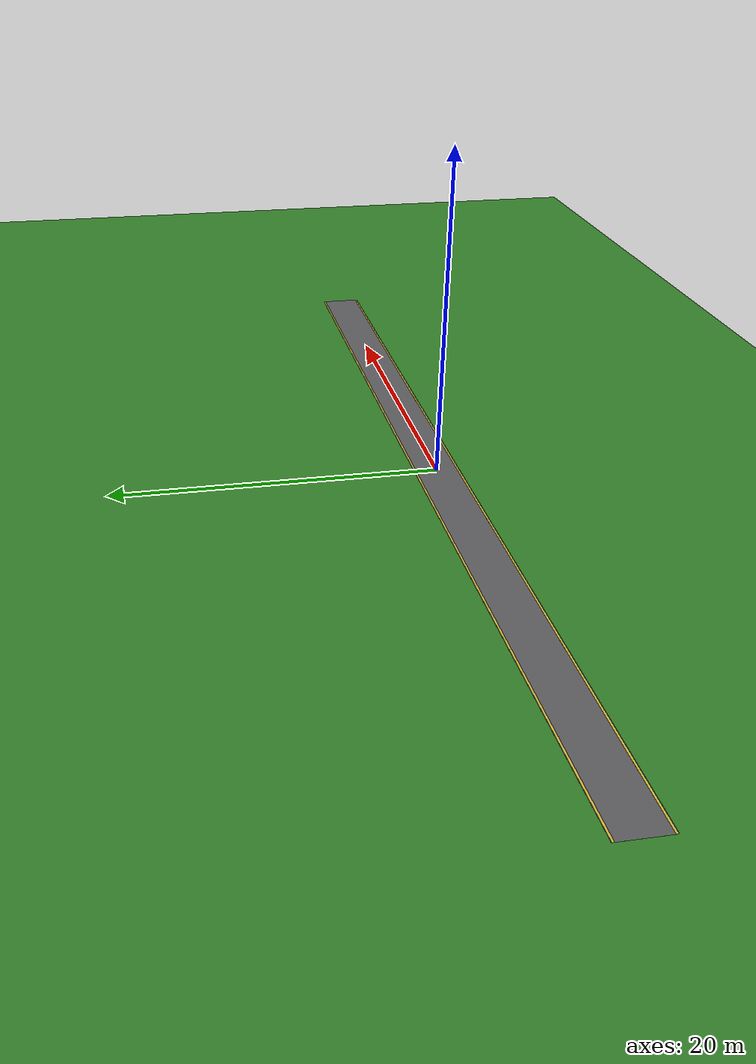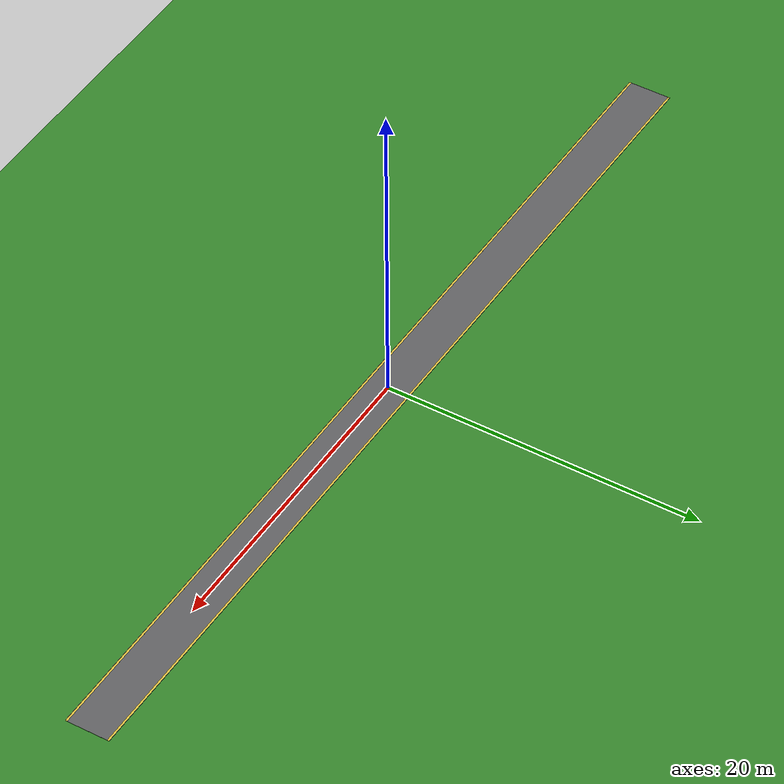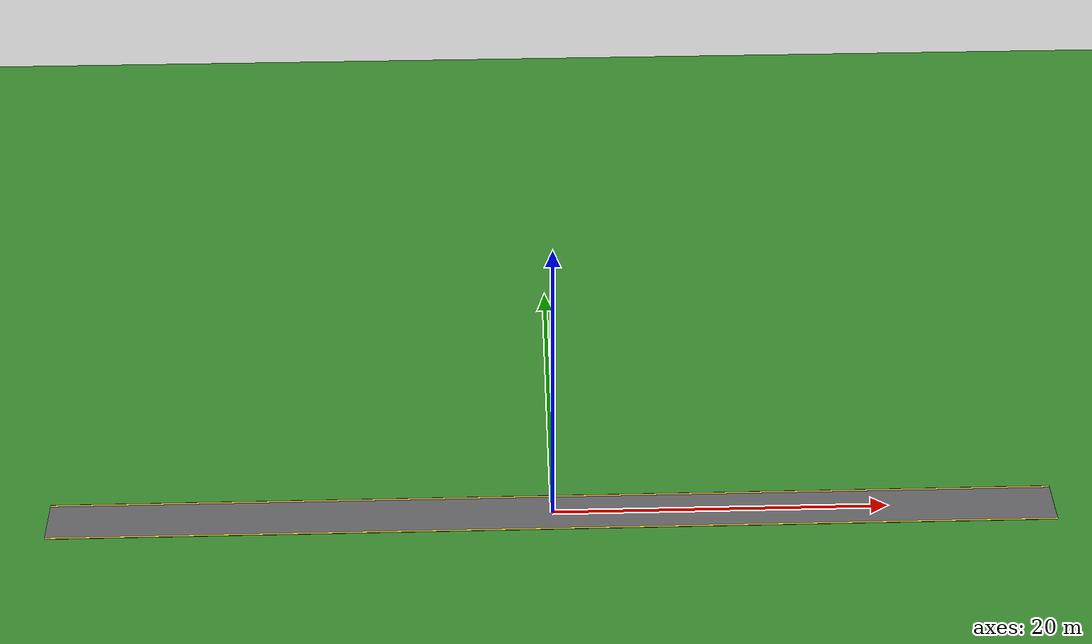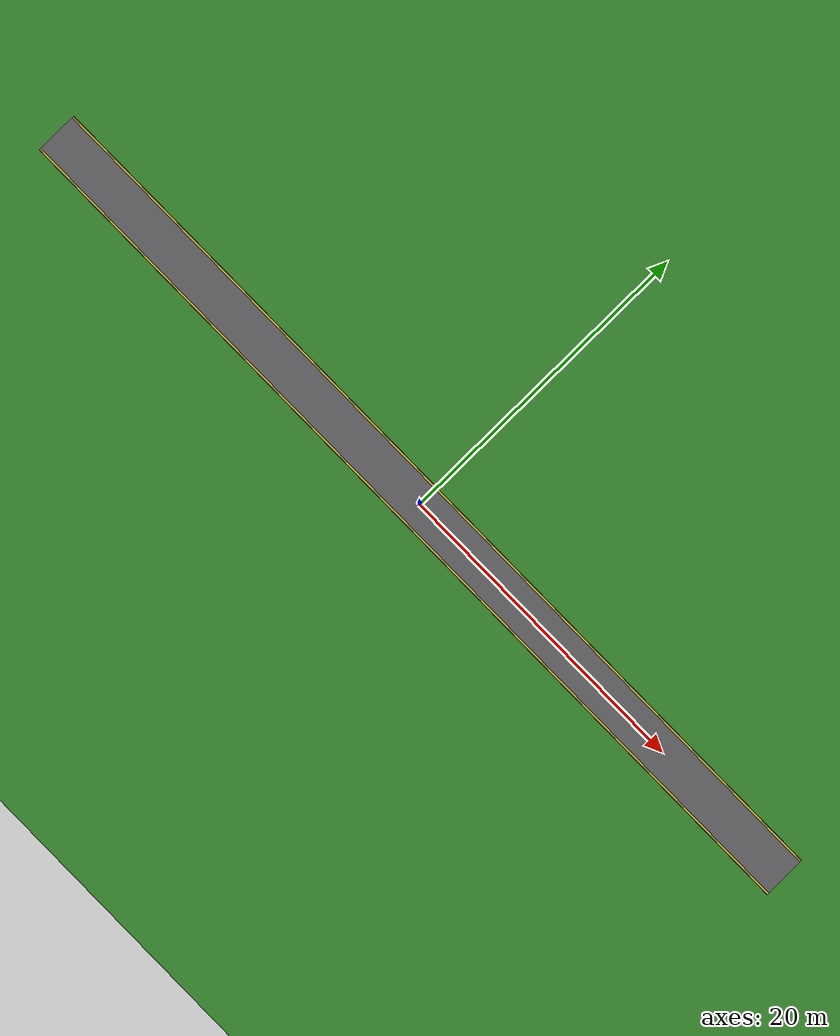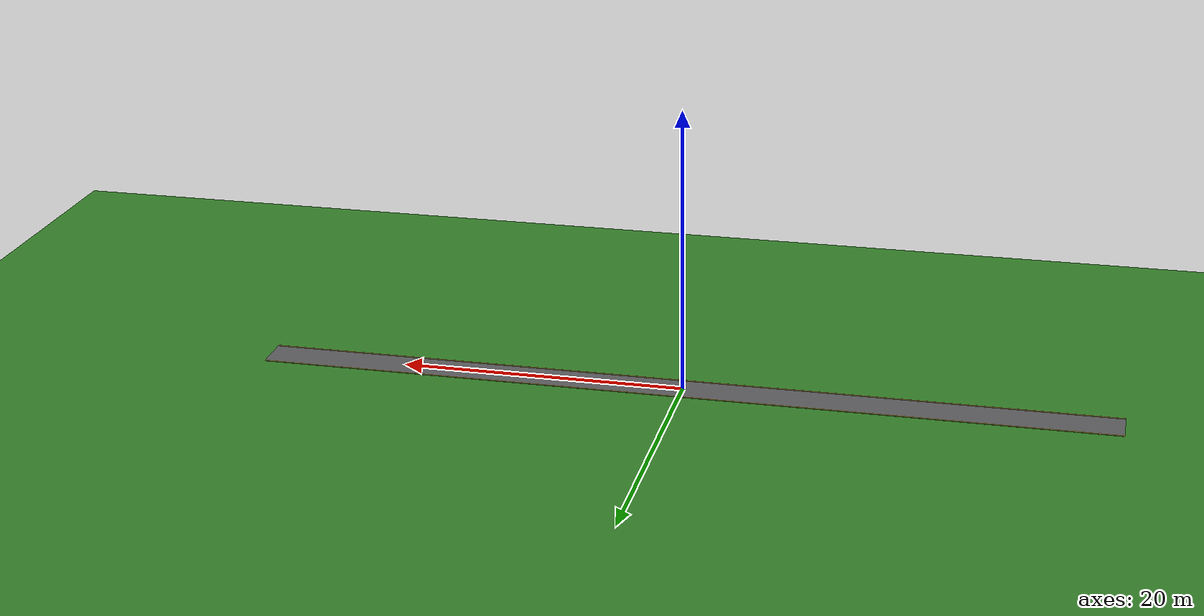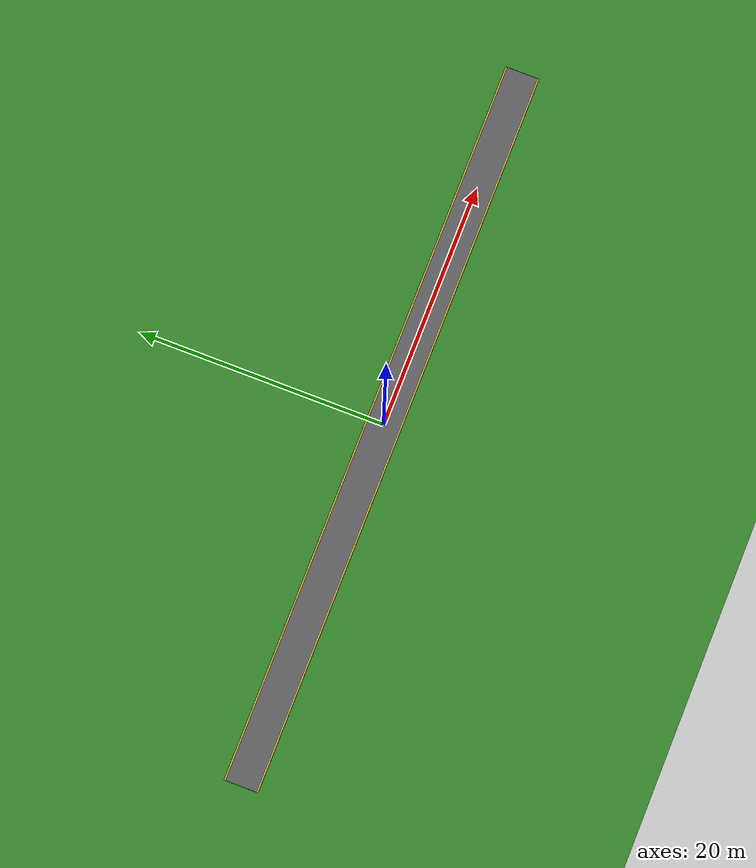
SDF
<?xml version="1.0" ?>
<sdf version="1.5">
  <world name="grass_runway_3m">
    <include>
      <uri>model://sun</uri>
    </include>

    <physics name="default_physics" default="0" type="ode">
      <gravity>0 0 -9.8066</gravity>
      <ode>
        <solver>
          <type>quick</type>
          <iters>10</iters>
          <sor>1.3</sor>
          <use_dynamic_moi_rescaling>0</use_dynamic_moi_rescaling>
        </solver>
        <constraints>
          <cfm>0</cfm>
          <erp>0.2</erp>
          <contact_max_correcting_vel>100</contact_max_correcting_vel>
          <contact_surface_layer>0.001</contact_surface_layer>
        </constraints>
      </ode>
      <max_step_size>0.004</max_step_size>
      <real_time_factor>1</real_time_factor>
      <real_time_update_rate>250</real_time_update_rate>
      <magnetic_field>6.0e-6 2.3e-5 -4.2e-5</magnetic_field>
    </physics>

    <model name="grass_field_with_runway">
      <static>true</static>
      <pose>0 0 0 0 0 0</pose>

      <link name="ground_link">
        <collision name="grass_ground_collision">
          <pose>0 0 -0.05 0 0 0</pose>
          <geometry>
            <box>
              <size>300 300 0.1</size>
            </box>
          </geometry>
          <surface>
            <contact>
              <ode/>
            </contact>
            <friction>
              <ode>
                <mu>100</mu>
                <mu2>50</mu2>
              </ode>
            </friction>
          </surface>
        </collision>

        <visual name="grass_ground_visual">
          <pose>0 0 0 0 0 0</pose>
          <geometry>
            <box>
              <size>300 300 0.001</size>
            </box>
          </geometry>
          <material>
            <ambient>0.16 0.38 0.12 1</ambient>
            <diffuse>0.20 0.50 0.16 1</diffuse>
            <specular>0.02 0.02 0.02 1</specular>
          </material>
        </visual>

        <visual name="runway_visual">
          <pose>0 0 0.001 0 0 0</pose>
          <geometry>
            <box>
              <size>60 2.8 0.002</size>
            </box>
          </geometry>
          <material>
            <ambient>0.30 0.30 0.31 1</ambient>
            <diffuse>0.36 0.36 0.37 1</diffuse>
            <specular>0.01 0.01 0.01 1</specular>
          </material>
        </visual>

        <visual name="runway_left_edge_visual">
          <pose>0 1.32 0.002 0 0 0</pose>
          <geometry>
            <box>
              <size>60 0.12 0.002</size>
            </box>
          </geometry>
          <material>
            <ambient>0.72 0.61 0.20 1</ambient>
            <diffuse>0.84 0.72 0.24 1</diffuse>
            <specular>0.02 0.02 0.02 1</specular>
          </material>
        </visual>

        <visual name="runway_right_edge_visual">
          <pose>0 -1.32 0.002 0 0 0</pose>
          <geometry>
            <box>
              <size>60 0.12 0.002</size>
            </box>
          </geometry>
          <material>
            <ambient>0.72 0.61 0.20 1</ambient>
            <diffuse>0.84 0.72 0.24 1</diffuse>
            <specular>0.02 0.02 0.02 1</specular>
          </material>
        </visual>
      </link>
    </model>
  </world>
</sdf>
